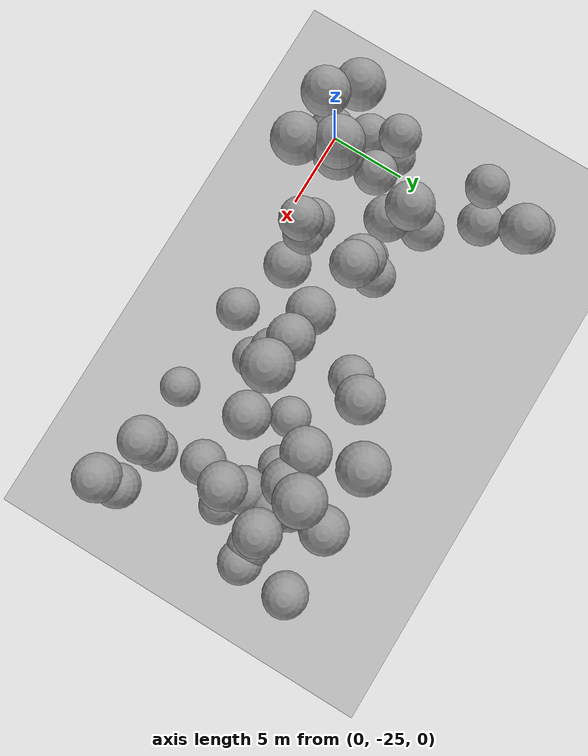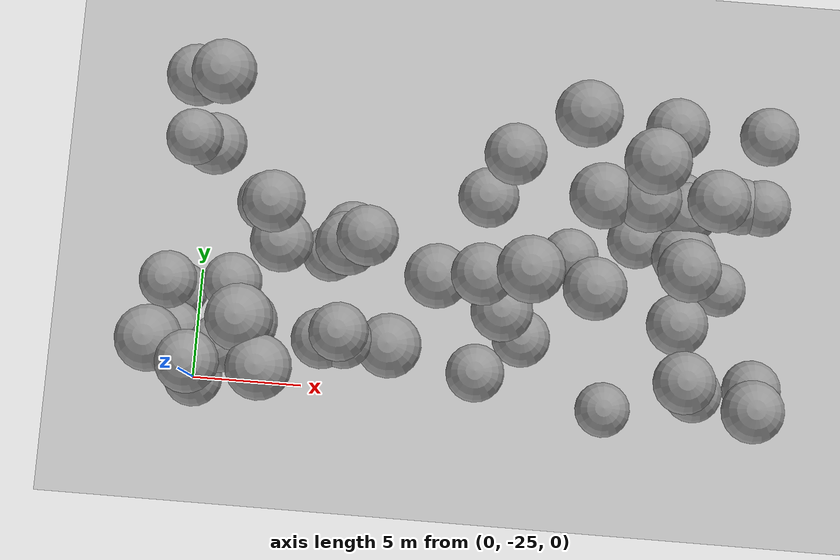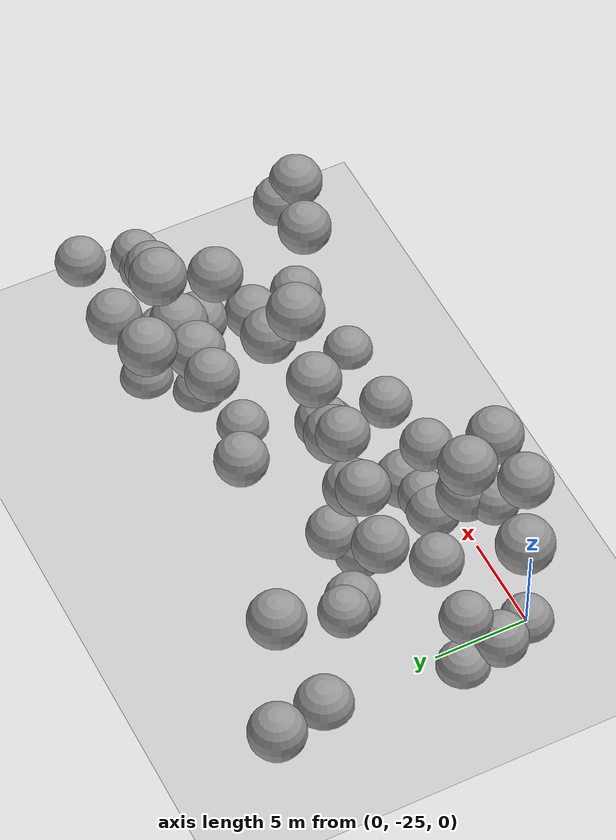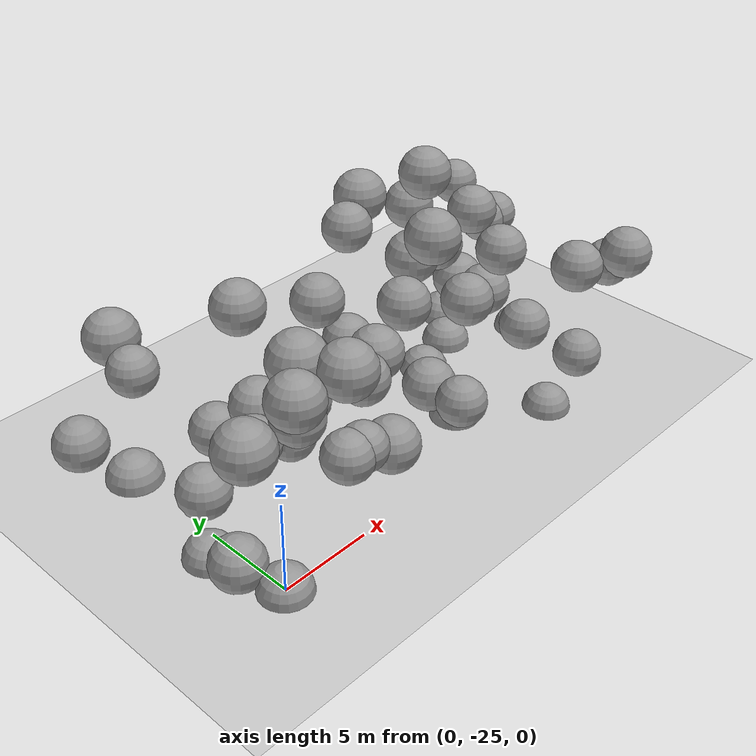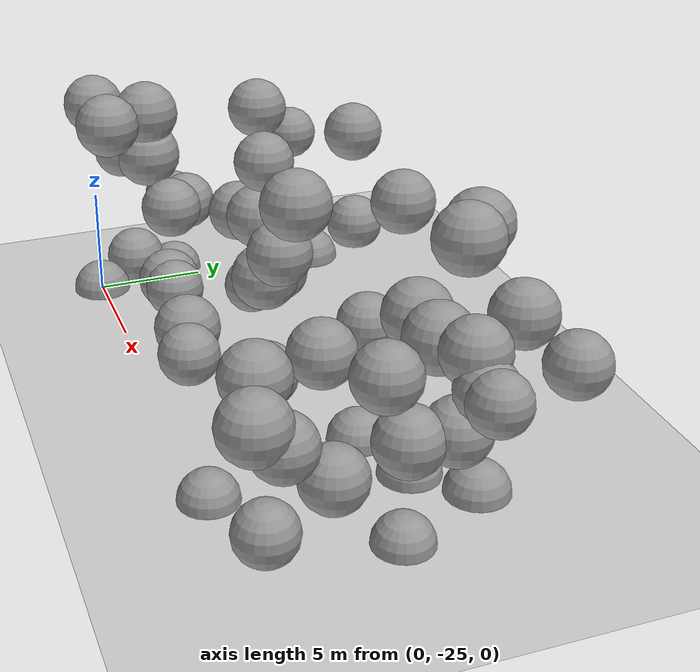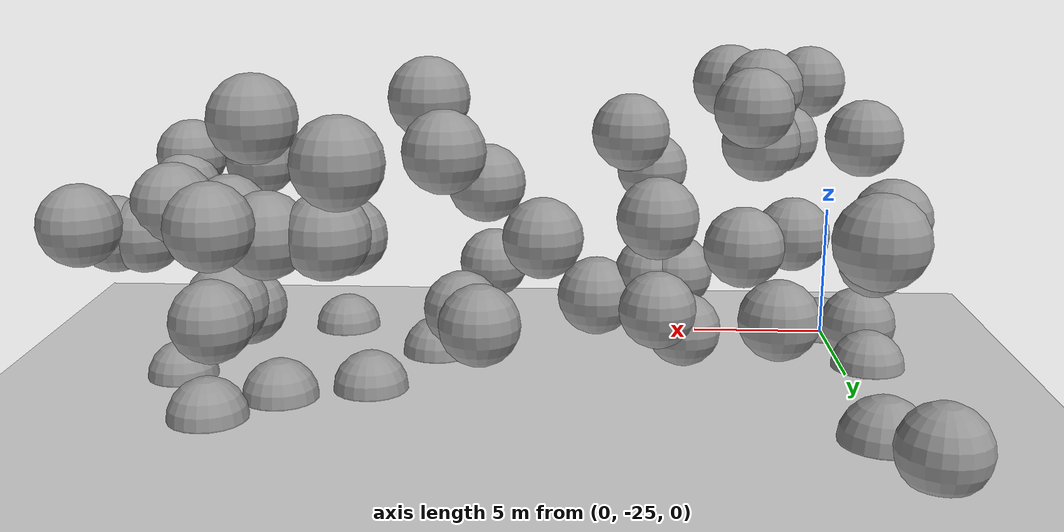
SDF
<sdf version="1.7">
 <world name="default">
  <model name="ground_plane">
   <static>1</static>
   <link name="link">
    <collision name="collision">
     <geometry><plane><normal>0 0 1</normal><size>100 100</size></plane></geometry>
     <surface>
      <contact><collide_bitmask>65535</collide_bitmask></contact>
      <friction><ode><mu>100</mu><mu2>50</mu2></ode></friction>
     </surface>
    </collision>
    <visual name="visual">
     <cast_shadows>0</cast_shadows>
     <geometry><plane><normal>0 0 1</normal><size>100 100</size></plane></geometry>
     <material>
      <script><uri>file://media/materials/scripts/gazebo.material</uri><name>Gazebo/Grey</name></script>
     </material>
    </visual>
   </link>
  </model>
  <model name="sphere_2">
   <static>1</static>
   <pose>0 -15 7 0 0 0</pose>
   <link name="link">
    <inertial>
     <mass>820.1626990093562</mass>
     <inertia>
      <ixx>513.4532903489413</ixx>
      <iyy>513.4532903489413</iyy>
      <izz>513.4532903489413</izz>
      <ixy>0</ixy>
      <ixz>0</ixz>
      <iyz>0</iyz>
     </inertia>
    </inertial>
    <collision name="collision">
     <geometry><sphere><radius>1.2510379038973842</radius></sphere></geometry>
    </collision>
    <visual name="visual">
     <geometry><sphere><radius>1.2510379038973842</radius></sphere></geometry>
     <material>
      <script><uri>file://media/materials/scripts/gazebo.material</uri><name>Gazebo/Grey</name></script>
     </material>
    </visual>
   </link>
  </model>
  <model name="sphere_18">
   <static>1</static>
   <pose>21 -13 7 0 0 0</pose>
   <link name="link">
    <inertial>
     <mass>1147.8261144888318</mass>
     <inertia>
      <ixx>899.0718924111744</ixx>
      <iyy>899.0718924111744</iyy>
      <izz>899.0718924111744</izz>
      <ixy>0</ixy>
      <ixz>0</ixz>
      <iyz>0</iyz>
     </inertia>
    </inertial>
    <collision name="collision">
     <geometry><sphere><radius>1.3993590601785768</radius></sphere></geometry>
    </collision>
    <visual name="visual">
     <geometry><sphere><radius>1.3993590601785768</radius></sphere></geometry>
     <material>
      <script><uri>file://media/materials/scripts/gazebo.material</uri><name>Gazebo/Grey</name></script>
     </material>
    </visual>
   </link>
  </model>
  <model name="sphere_33">
   <static>1</static>
   <pose>23 -24 1 0 0 0</pose>
   <link name="link">
    <inertial>
     <mass>998.2394421149766</mass>
     <inertia>
      <ixx>712.4025430400376</ixx>
      <iyy>712.4025430400376</iyy>
      <izz>712.4025430400376</izz>
      <ixy>0</ixy>
      <ixz>0</ixz>
      <iyz>0</iyz>
     </inertia>
    </inertial>
    <collision name="collision">
     <geometry><sphere><radius>1.3357198255867795</radius></sphere></geometry>
    </collision>
    <visual name="visual">
     <geometry><sphere><radius>1.3357198255867795</radius></sphere></geometry>
     <material>
      <script><uri>file://media/materials/scripts/gazebo.material</uri><name>Gazebo/Grey</name></script>
     </material>
    </visual>
   </link>
  </model>
  <model name="sphere_37">
   <static>1</static>
   <pose>6 -19 2 0 0 0</pose>
   <link name="link">
    <inertial>
     <mass>923.9607349359668</mass>
     <inertia>
      <ixx>626.2630342780069</ixx>
      <iyy>626.2630342780069</iyy>
      <izz>626.2630342780069</izz>
      <ixy>0</ixy>
      <ixz>0</ixz>
      <iyz>0</iyz>
     </inertia>
    </inertial>
    <collision name="collision">
     <geometry><sphere><radius>1.301732162940054</radius></sphere></geometry>
    </collision>
    <visual name="visual">
     <geometry><sphere><radius>1.301732162940054</radius></sphere></geometry>
     <material>
      <script><uri>file://media/materials/scripts/gazebo.material</uri><name>Gazebo/Grey</name></script>
     </material>
    </visual>
   </link>
  </model>
  <model name="sphere_50">
   <static>1</static>
   <pose>13 -20 7 0 0 0</pose>
   <link name="link">
    <inertial>
     <mass>1108.6238766442202</mass>
     <inertia>
      <ixx>848.479391265563</ixx>
      <iyy>848.479391265563</iyy>
      <izz>848.479391265563</izz>
      <ixy>0</ixy>
      <ixz>0</ixz>
      <iyz>0</iyz>
     </inertia>
    </inertial>
    <collision name="collision">
     <geometry><sphere><radius>1.3832431860033219</radius></sphere></geometry>
    </collision>
    <visual name="visual">
     <geometry><sphere><radius>1.3832431860033219</radius></sphere></geometry>
     <material>
      <script><uri>file://media/materials/scripts/gazebo.material</uri><name>Gazebo/Grey</name></script>
     </material>
    </visual>
   </link>
  </model>
  <model name="sphere_86">
   <static>1</static>
   <pose>-1 -11 1 0 0 0</pose>
   <link name="link">
    <inertial>
     <mass>1323.1719641005752</mass>
     <inertia>
      <ixx>1139.4485907945868</ixx>
      <iyy>1139.4485907945868</iyy>
      <izz>1139.4485907945868</izz>
      <ixy>0</ixy>
      <ixz>0</ixz>
      <iyz>0</iyz>
     </inertia>
    </inertial>
    <collision name="collision">
     <geometry><sphere><radius>1.4672672600644945</radius></sphere></geometry>
    </collision>
    <visual name="visual">
     <geometry><sphere><radius>1.4672672600644945</radius></sphere></geometry>
     <material>
      <script><uri>file://media/materials/scripts/gazebo.material</uri><name>Gazebo/Grey</name></script>
     </material>
    </visual>
   </link>
  </model>
  <model name="sphere_88">
   <static>1</static>
   <pose>7 -19 6 0 0 0</pose>
   <link name="link">
    <inertial>
     <mass>1233.8693670264627</mass>
     <inertia>
      <ixx>1014.1827563802168</ixx>
      <iyy>1014.1827563802168</iyy>
      <izz>1014.1827563802168</izz>
      <ixy>0</ixy>
      <ixz>0</ixz>
      <iyz>0</iyz>
     </inertia>
    </inertial>
    <collision name="collision">
     <geometry><sphere><radius>1.4334862261111592</radius></sphere></geometry>
    </collision>
    <visual name="visual">
     <geometry><sphere><radius>1.4334862261111592</radius></sphere></geometry>
     <material>
      <script><uri>file://media/materials/scripts/gazebo.material</uri><name>Gazebo/Grey</name></script>
     </material>
    </visual>
   </link>
  </model>
  <model name="sphere_94">
   <static>1</static>
   <pose>14 -21 2 0 0 0</pose>
   <link name="link">
    <inertial>
     <mass>1226.1503961438193</mass>
     <inertia>
      <ixx>1003.6304357332568</ixx>
      <iyy>1003.6304357332568</iyy>
      <izz>1003.6304357332568</izz>
      <ixy>0</ixy>
      <ixz>0</ixz>
      <iyz>0</iyz>
     </inertia>
    </inertial>
    <collision name="collision">
     <geometry><sphere><radius>1.4304907191277283</radius></sphere></geometry>
    </collision>
    <visual name="visual">
     <geometry><sphere><radius>1.4304907191277283</radius></sphere></geometry>
     <material>
      <script><uri>file://media/materials/scripts/gazebo.material</uri><name>Gazebo/Grey</name></script>
     </material>
    </visual>
   </link>
  </model>
  <model name="sphere_95">
   <static>1</static>
   <pose>24 -19 0 0 0 0</pose>
   <link name="link">
    <inertial>
     <mass>855.0352758426541</mass>
     <inertia>
      <ixx>550.3525369903084</ixx>
      <iyy>550.3525369903084</iyy>
      <izz>550.3525369903084</izz>
      <ixy>0</ixy>
      <ixz>0</ixz>
      <iyz>0</iyz>
     </inertia>
    </inertial>
    <collision name="collision">
     <geometry><sphere><radius>1.2685233752540006</radius></sphere></geometry>
    </collision>
    <visual name="visual">
     <geometry><sphere><radius>1.2685233752540006</radius></sphere></geometry>
     <material>
      <script><uri>file://media/materials/scripts/gazebo.material</uri><name>Gazebo/Grey</name></script>
     </material>
    </visual>
   </link>
  </model>
  <model name="sphere_101">
   <static>1</static>
   <pose>25 -16 6 0 0 0</pose>
   <link name="link">
    <inertial>
     <mass>841.7290316591947</mass>
     <inertia>
      <ixx>536.1522043649119</ixx>
      <iyy>536.1522043649119</iyy>
      <izz>536.1522043649119</izz>
      <ixy>0</ixy>
      <ixz>0</ixz>
      <iyz>0</iyz>
     </inertia>
    </inertial>
    <collision name="collision">
     <geometry><sphere><radius>1.2619085969323711</radius></sphere></geometry>
    </collision>
    <visual name="visual">
     <geometry><sphere><radius>1.2619085969323711</radius></sphere></geometry>
     <material>
      <script><uri>file://media/materials/scripts/gazebo.material</uri><name>Gazebo/Grey</name></script>
     </material>
    </visual>
   </link>
  </model>
  <model name="sphere_110">
   <static>1</static>
   <pose>19 -25 0 0 0 0</pose>
   <link name="link">
    <inertial>
     <mass>875.2082117400884</mass>
     <inertia>
      <ixx>572.1631601987316</ixx>
      <iyy>572.1631601987316</iyy>
      <izz>572.1631601987316</izz>
      <ixy>0</ixy>
      <ixz>0</ixz>
      <iyz>0</iyz>
     </inertia>
    </inertial>
    <collision name="collision">
     <geometry><sphere><radius>1.2784220662036958</radius></sphere></geometry>
    </collision>
    <visual name="visual">
     <geometry><sphere><radius>1.2784220662036958</radius></sphere></geometry>
     <material>
      <script><uri>file://media/materials/scripts/gazebo.material</uri><name>Gazebo/Grey</name></script>
     </material>
    </visual>
   </link>
  </model>
  <model name="sphere_112">
   <static>1</static>
   <pose>22 -24 7 0 0 0</pose>
   <link name="link">
    <inertial>
     <mass>1078.3061655491188</mass>
     <inertia>
      <ixx>810.1605015690552</ixx>
      <iyy>810.1605015690552</iyy>
      <izz>810.1605015690552</izz>
      <ixy>0</ixy>
      <ixz>0</ixz>
      <iyz>0</iyz>
     </inertia>
    </inertial>
    <collision name="collision">
     <geometry><sphere><radius>1.3705172086279165</radius></sphere></geometry>
    </collision>
    <visual name="visual">
     <geometry><sphere><radius>1.3705172086279165</radius></sphere></geometry>
     <material>
      <script><uri>file://media/materials/scripts/gazebo.material</uri><name>Gazebo/Grey</name></script>
     </material>
    </visual>
   </link>
  </model>
  <model name="sphere_115">
   <static>1</static>
   <pose>-1 -21 0 0 0 0</pose>
   <link name="link">
    <inertial>
     <mass>1014.352241181074</mass>
     <inertia>
      <ixx>731.67054789438</ixx>
      <iyy>731.67054789438</iyy>
      <izz>731.67054789438</izz>
      <ixy>0</ixy>
      <ixz>0</ixz>
      <iyz>0</iyz>
     </inertia>
    </inertial>
    <collision name="collision">
     <geometry><sphere><radius>1.3428682155516831</radius></sphere></geometry>
    </collision>
    <visual name="visual">
     <geometry><sphere><radius>1.3428682155516831</radius></sphere></geometry>
     <material>
      <script><uri>file://media/materials/scripts/gazebo.material</uri><name>Gazebo/Grey</name></script>
     </material>
    </visual>
   </link>
  </model>
  <model name="sphere_127">
   <static>1</static>
   <pose>15 -20 10 0 0 0</pose>
   <link name="link">
    <inertial>
     <mass>1273.777763205621</mass>
     <inertia>
      <ixx>1069.4414763830673</ixx>
      <iyy>1069.4414763830673</iyy>
      <izz>1069.4414763830673</izz>
      <ixy>0</ixy>
      <ixz>0</ixz>
      <iyz>0</iyz>
     </inertia>
    </inertial>
    <collision name="collision">
     <geometry><sphere><radius>1.4487774731129108</radius></sphere></geometry>
    </collision>
    <visual name="visual">
     <geometry><sphere><radius>1.4487774731129108</radius></sphere></geometry>
     <material>
      <script><uri>file://media/materials/scripts/gazebo.material</uri><name>Gazebo/Grey</name></script>
     </material>
    </visual>
   </link>
  </model>
  <model name="sphere_136">
   <static>1</static>
   <pose>2 -21 5 0 0 0</pose>
   <link name="link">
    <inertial>
     <mass>976.1705251949811</mass>
     <inertia>
      <ixx>686.3469934850493</ixx>
      <iyy>686.3469934850493</iyy>
      <izz>686.3469934850493</izz>
      <ixy>0</ixy>
      <ixz>0</ixz>
      <iyz>0</iyz>
     </inertia>
    </inertial>
    <collision name="collision">
     <geometry><sphere><radius>1.325803090365776</radius></sphere></geometry>
    </collision>
    <visual name="visual">
     <geometry><sphere><radius>1.325803090365776</radius></sphere></geometry>
     <material>
      <script><uri>file://media/materials/scripts/gazebo.material</uri><name>Gazebo/Grey</name></script>
     </material>
    </visual>
   </link>
  </model>
  <model name="sphere_147">
   <static>1</static>
   <pose>4 -25 10 0 0 0</pose>
   <link name="link">
    <inertial>
     <mass>1149.0251700719905</mass>
     <inertia>
      <ixx>900.6377691280899</ixx>
      <iyy>900.6377691280899</iyy>
      <izz>900.6377691280899</izz>
      <ixy>0</ixy>
      <ixz>0</ixz>
      <iyz>0</iyz>
     </inertia>
    </inertial>
    <collision name="collision">
     <geometry><sphere><radius>1.3998461622305505</radius></sphere></geometry>
    </collision>
    <visual name="visual">
     <geometry><sphere><radius>1.3998461622305505</radius></sphere></geometry>
     <material>
      <script><uri>file://media/materials/scripts/gazebo.material</uri><name>Gazebo/Grey</name></script>
     </material>
    </visual>
   </link>
  </model>
  <model name="sphere_156">
   <static>1</static>
   <pose>6 -23 3 0 0 0</pose>
   <link name="link">
    <inertial>
     <mass>1111.9185388971252</mass>
     <inertia>
      <ixx>852.6861401146127</ixx>
      <iyy>852.6861401146127</iyy>
      <izz>852.6861401146127</izz>
      <ixy>0</ixy>
      <ixz>0</ixz>
      <iyz>0</iyz>
     </inertia>
    </inertial>
    <collision name="collision">
     <geometry><sphere><radius>1.384612093917686</radius></sphere></geometry>
    </collision>
    <visual name="visual">
     <geometry><sphere><radius>1.384612093917686</radius></sphere></geometry>
     <material>
      <script><uri>file://media/materials/scripts/gazebo.material</uri><name>Gazebo/Grey</name></script>
     </material>
    </visual>
   </link>
  </model>
  <model name="sphere_163">
   <static>1</static>
   <pose>-1 -24 8 0 0 0</pose>
   <link name="link">
    <inertial>
     <mass>1281.579532136894</mass>
     <inertia>
      <ixx>1080.380797213852</ixx>
      <iyy>1080.380797213852</iyy>
      <izz>1080.380797213852</izz>
      <ixy>0</ixy>
      <ixz>0</ixz>
      <iyz>0</iyz>
     </inertia>
    </inertial>
    <collision name="collision">
     <geometry><sphere><radius>1.451729329904357</radius></sphere></geometry>
    </collision>
    <visual name="visual">
     <geometry><sphere><radius>1.451729329904357</radius></sphere></geometry>
     <material>
      <script><uri>file://media/materials/scripts/gazebo.material</uri><name>Gazebo/Grey</name></script>
     </material>
    </visual>
   </link>
  </model>
  <model name="sphere_165">
   <static>1</static>
   <pose>14 -15 9 0 0 0</pose>
   <link name="link">
    <inertial>
     <mass>1017.2076411902935</mass>
     <inertia>
      <ixx>735.1065204096426</ixx>
      <iyy>735.1065204096426</iyy>
      <izz>735.1065204096426</izz>
      <ixy>0</ixy>
      <ixz>0</ixz>
      <iyz>0</iyz>
     </inertia>
    </inertial>
    <collision name="collision">
     <geometry><sphere><radius>1.3441270923691977</radius></sphere></geometry>
    </collision>
    <visual name="visual">
     <geometry><sphere><radius>1.3441270923691977</radius></sphere></geometry>
     <material>
      <script><uri>file://media/materials/scripts/gazebo.material</uri><name>Gazebo/Grey</name></script>
     </material>
    </visual>
   </link>
  </model>
  <model name="sphere_169">
   <static>1</static>
   <pose>24 -16 6 0 0 0</pose>
   <link name="link">
    <inertial>
     <mass>847.3583752920309</mass>
     <inertia>
      <ixx>542.1416781510901</ixx>
      <iyy>542.1416781510901</iyy>
      <izz>542.1416781510901</izz>
      <ixy>0</ixy>
      <ixz>0</ixz>
      <iyz>0</iyz>
     </inertia>
    </inertial>
    <collision name="collision">
     <geometry><sphere><radius>1.264715493719504</radius></sphere></geometry>
    </collision>
    <visual name="visual">
     <geometry><sphere><radius>1.264715493719504</radius></sphere></geometry>
     <material>
      <script><uri>file://media/materials/scripts/gazebo.material</uri><name>Gazebo/Grey</name></script>
     </material>
    </visual>
   </link>
  </model>
  <model name="sphere_172">
   <static>1</static>
   <pose>0 -25 0 0 0 0</pose>
   <link name="link">
    <inertial>
     <mass>1085.5033214784619</mass>
     <inertia>
      <ixx>819.1928999734619</ixx>
      <iyy>819.1928999734619</iyy>
      <izz>819.1928999734619</izz>
      <ixy>0</ixy>
      <ixz>0</ixz>
      <iyz>0</iyz>
     </inertia>
    </inertial>
    <collision name="collision">
     <geometry><sphere><radius>1.3735596227429996</radius></sphere></geometry>
    </collision>
    <visual name="visual">
     <geometry><sphere><radius>1.3735596227429996</radius></sphere></geometry>
     <material>
      <script><uri>file://media/materials/scripts/gazebo.material</uri><name>Gazebo/Grey</name></script>
     </material>
    </visual>
   </link>
  </model>
  <model name="sphere_175">
   <static>1</static>
   <pose>18 -16 6 0 0 0</pose>
   <link name="link">
    <inertial>
     <mass>1388.4366052491248</mass>
     <inertia>
      <ixx>1234.651372535838</ixx>
      <iyy>1234.651372535838</iyy>
      <izz>1234.651372535838</izz>
      <ixy>0</ixy>
      <ixz>0</ixz>
      <iyz>0</iyz>
     </inertia>
    </inertial>
    <collision name="collision">
     <geometry><sphere><radius>1.4910051673492024</radius></sphere></geometry>
    </collision>
    <visual name="visual">
     <geometry><sphere><radius>1.4910051673492024</radius></sphere></geometry>
     <material>
      <script><uri>file://media/materials/scripts/gazebo.material</uri><name>Gazebo/Grey</name></script>
     </material>
    </visual>
   </link>
  </model>
  <model name="sphere_179">
   <static>1</static>
   <pose>23 -16 7 0 0 0</pose>
   <link name="link">
    <inertial>
     <mass>1131.3043846475268</mass>
     <inertia>
      <ixx>877.6069132748735</ixx>
      <iyy>877.6069132748735</iyy>
      <izz>877.6069132748735</izz>
      <ixy>0</ixy>
      <ixz>0</ixz>
      <iyz>0</iyz>
     </inertia>
    </inertial>
    <collision name="collision">
     <geometry><sphere><radius>1.3926124934498558</radius></sphere></geometry>
    </collision>
    <visual name="visual">
     <geometry><sphere><radius>1.3926124934498558</radius></sphere></geometry>
     <material>
      <script><uri>file://media/materials/scripts/gazebo.material</uri><name>Gazebo/Grey</name></script>
     </material>
    </visual>
   </link>
  </model>
  <model name="sphere_188">
   <static>1</static>
   <pose>20 -16 6 0 0 0</pose>
   <link name="link">
    <inertial>
     <mass>1365.4670408220738</mass>
     <inertia>
      <ixx>1200.7970750833701</ixx>
      <iyy>1200.7970750833701</iyy>
      <izz>1200.7970750833701</izz>
      <ixy>0</ixy>
      <ixz>0</ixz>
      <iyz>0</iyz>
     </inertia>
    </inertial>
    <collision name="collision">
     <geometry><sphere><radius>1.4827372701746828</radius></sphere></geometry>
    </collision>
    <visual name="visual">
     <geometry><sphere><radius>1.4827372701746828</radius></sphere></geometry>
     <material>
      <script><uri>file://media/materials/scripts/gazebo.material</uri><name>Gazebo/Grey</name></script>
     </material>
    </visual>
   </link>
  </model>
  <model name="sphere_204">
   <static>1</static>
   <pose>-1 -23 1 0 0 0</pose>
   <link name="link">
    <inertial>
     <mass>1167.2398915135711</mass>
     <inertia>
      <ixx>924.5586250048497</ixx>
      <iyy>924.5586250048497</iyy>
      <izz>924.5586250048497</izz>
      <ixy>0</ixy>
      <ixz>0</ixz>
      <iyz>0</iyz>
     </inertia>
    </inertial>
    <collision name="collision">
     <geometry><sphere><radius>1.4072043558131624</radius></sphere></geometry>
    </collision>
    <visual name="visual">
     <geometry><sphere><radius>1.4072043558131624</radius></sphere></geometry>
     <material>
      <script><uri>file://media/materials/scripts/gazebo.material</uri><name>Gazebo/Grey</name></script>
     </material>
    </visual>
   </link>
  </model>
  <model name="sphere_207">
   <static>1</static>
   <pose>20 -15 10 0 0 0</pose>
   <link name="link">
    <inertial>
     <mass>1270.6309968707947</mass>
     <inertia>
      <ixx>1065.0418202968024</ixx>
      <iyy>1065.0418202968024</iyy>
      <izz>1065.0418202968024</izz>
      <ixy>0</ixy>
      <ixz>0</ixz>
      <iyz>0</iyz>
     </inertia>
    </inertial>
    <collision name="collision">
     <geometry><sphere><radius>1.4475834596155397</radius></sphere></geometry>
    </collision>
    <visual name="visual">
     <geometry><sphere><radius>1.4475834596155397</radius></sphere></geometry>
     <material>
      <script><uri>file://media/materials/scripts/gazebo.material</uri><name>Gazebo/Grey</name></script>
     </material>
    </visual>
   </link>
  </model>
  <model name="sphere_214">
   <static>1</static>
   <pose>18 -20 5 0 0 0</pose>
   <link name="link">
    <inertial>
     <mass>1228.8949390128416</mass>
     <inertia>
      <ixx>1007.3773407196586</ixx>
      <iyy>1007.3773407196586</iyy>
      <izz>1007.3773407196586</izz>
      <ixy>0</ixy>
      <ixz>0</ixz>
      <iyz>0</iyz>
     </inertia>
    </inertial>
    <collision name="collision">
     <geometry><sphere><radius>1.431557232522639</radius></sphere></geometry>
    </collision>
    <visual name="visual">
     <geometry><sphere><radius>1.431557232522639</radius></sphere></geometry>
     <material>
      <script><uri>file://media/materials/scripts/gazebo.material</uri><name>Gazebo/Grey</name></script>
     </material>
    </visual>
   </link>
  </model>
  <model name="sphere_227">
   <static>1</static>
   <pose>25 -25 7 0 0 0</pose>
   <link name="link">
    <inertial>
     <mass>1100.9987035556503</mass>
     <inertia>
      <ixx>838.7752319295337</ixx>
      <iyy>838.7752319295337</iyy>
      <izz>838.7752319295337</izz>
      <ixy>0</ixy>
      <ixz>0</ixz>
      <iyz>0</iyz>
     </inertia>
    </inertial>
    <collision name="collision">
     <geometry><sphere><radius>1.3800645475181441</radius></sphere></geometry>
    </collision>
    <visual name="visual">
     <geometry><sphere><radius>1.3800645475181441</radius></sphere></geometry>
     <material>
      <script><uri>file://media/materials/scripts/gazebo.material</uri><name>Gazebo/Grey</name></script>
     </material>
    </visual>
   </link>
  </model>
  <model name="sphere_230">
   <static>1</static>
   <pose>3 -23 8 0 0 0</pose>
   <link name="link">
    <inertial>
     <mass>1294.75381477178</mass>
     <inertia>
      <ixx>1098.954176604033</ixx>
      <iyy>1098.954176604033</iyy>
      <izz>1098.954176604033</izz>
      <ixy>0</ixy>
      <ixz>0</ixz>
      <iyz>0</iyz>
     </inertia>
    </inertial>
    <collision name="collision">
     <geometry><sphere><radius>1.4566868397123818</radius></sphere></geometry>
    </collision>
    <visual name="visual">
     <geometry><sphere><radius>1.4566868397123818</radius></sphere></geometry>
     <material>
      <script><uri>file://media/materials/scripts/gazebo.material</uri><name>Gazebo/Grey</name></script>
     </material>
    </visual>
   </link>
  </model>
  <model name="sphere_241">
   <static>1</static>
   <pose>25 -24 6 0 0 0</pose>
   <link name="link">
    <inertial>
     <mass>899.5227463981558</mass>
     <inertia>
      <ixx>598.9002600154103</ixx>
      <iyy>598.9002600154103</iyy>
      <izz>598.9002600154103</izz>
      <ixy>0</ixy>
      <ixz>0</ixz>
      <iyz>0</iyz>
     </inertia>
    </inertial>
    <collision name="collision">
     <geometry><sphere><radius>1.2901528918984286</radius></sphere></geometry>
    </collision>
    <visual name="visual">
     <geometry><sphere><radius>1.2901528918984286</radius></sphere></geometry>
     <material>
      <script><uri>file://media/materials/scripts/gazebo.material</uri><name>Gazebo/Grey</name></script>
     </material>
    </visual>
   </link>
  </model>
  <model name="sphere_244">
   <static>1</static>
   <pose>25 -13 7 0 0 0</pose>
   <link name="link">
    <inertial>
     <mass>891.3588274598362</mass>
     <inertia>
      <ixx>589.868495634434</ixx>
      <iyy>589.868495634434</iyy>
      <izz>589.868495634434</izz>
      <ixy>0</ixy>
      <ixz>0</ixz>
      <iyz>0</iyz>
     </inertia>
    </inertial>
    <collision name="collision">
     <geometry><sphere><radius>1.2862379530531802</radius></sphere></geometry>
    </collision>
    <visual name="visual">
     <geometry><sphere><radius>1.2862379530531802</radius></sphere></geometry>
     <material>
      <script><uri>file://media/materials/scripts/gazebo.material</uri><name>Gazebo/Grey</name></script>
     </material>
    </visual>
   </link>
  </model>
  <model name="sphere_251">
   <static>1</static>
   <pose>1 -12 7 0 0 0</pose>
   <link name="link">
    <inertial>
     <mass>1258.0638740797724</mass>
     <inertia>
      <ixx>1047.5435111934312</ixx>
      <iyy>1047.5435111934312</iyy>
      <izz>1047.5435111934312</izz>
      <ixy>0</ixy>
      <ixz>0</ixz>
      <iyz>0</iyz>
     </inertia>
    </inertial>
    <collision name="collision">
     <geometry><sphere><radius>1.4427952175340686</radius></sphere></geometry>
    </collision>
    <visual name="visual">
     <geometry><sphere><radius>1.4427952175340686</radius></sphere></geometry>
     <material>
      <script><uri>file://media/materials/scripts/gazebo.material</uri><name>Gazebo/Grey</name></script>
     </material>
    </visual>
   </link>
  </model>
  <model name="sphere_253">
   <static>1</static>
   <pose>13 -16 3 0 0 0</pose>
   <link name="link">
    <inertial>
     <mass>1122.011835682702</mass>
     <inertia>
      <ixx>865.6253813052869</ixx>
      <iyy>865.6253813052869</iyy>
      <izz>865.6253813052869</izz>
      <ixy>0</ixy>
      <ixz>0</ixz>
      <iyz>0</iyz>
     </inertia>
    </inertial>
    <collision name="collision">
     <geometry><sphere><radius>1.3887890265339882</radius></sphere></geometry>
    </collision>
    <visual name="visual">
     <geometry><sphere><radius>1.3887890265339882</radius></sphere></geometry>
     <material>
      <script><uri>file://media/materials/scripts/gazebo.material</uri><name>Gazebo/Grey</name></script>
     </material>
    </visual>
   </link>
  </model>
  <model name="sphere_257">
   <static>1</static>
   <pose>22 -19 6 0 0 0</pose>
   <link name="link">
    <inertial>
     <mass>1182.2717639091984</mass>
     <inertia>
      <ixx>944.4880068758343</ixx>
      <iyy>944.4880068758343</iyy>
      <izz>944.4880068758343</izz>
      <ixy>0</ixy>
      <ixz>0</ixz>
      <iyz>0</iyz>
     </inertia>
    </inertial>
    <collision name="collision">
     <geometry><sphere><radius>1.413219331033977</radius></sphere></geometry>
    </collision>
    <visual name="visual">
     <geometry><sphere><radius>1.413219331033977</radius></sphere></geometry>
     <material>
      <script><uri>file://media/materials/scripts/gazebo.material</uri><name>Gazebo/Grey</name></script>
     </material>
    </visual>
   </link>
  </model>
  <model name="sphere_261">
   <static>1</static>
   <pose>22 -21 2 0 0 0</pose>
   <link name="link">
    <inertial>
     <mass>1197.4669793394505</mass>
     <inertia>
      <ixx>964.8063706221025</ixx>
      <iyy>964.8063706221025</iyy>
      <izz>964.8063706221025</izz>
      <ixy>0</ixy>
      <ixz>0</ixz>
      <iyz>0</iyz>
     </inertia>
    </inertial>
    <collision name="collision">
     <geometry><sphere><radius>1.4192480701738406</radius></sphere></geometry>
    </collision>
    <visual name="visual">
     <geometry><sphere><radius>1.4192480701738406</radius></sphere></geometry>
     <material>
      <script><uri>file://media/materials/scripts/gazebo.material</uri><name>Gazebo/Grey</name></script>
     </material>
    </visual>
   </link>
  </model>
  <model name="sphere_263">
   <static>1</static>
   <pose>4 -19 5 0 0 0</pose>
   <link name="link">
    <inertial>
     <mass>1167.1749013714789</mass>
     <inertia>
      <ixx>924.4728299001561</ixx>
      <iyy>924.4728299001561</iyy>
      <izz>924.4728299001561</izz>
      <ixy>0</ixy>
      <ixz>0</ixz>
      <iyz>0</iyz>
     </inertia>
    </inertial>
    <collision name="collision">
     <geometry><sphere><radius>1.4071782383289153</radius></sphere></geometry>
    </collision>
    <visual name="visual">
     <geometry><sphere><radius>1.4071782383289153</radius></sphere></geometry>
     <material>
      <script><uri>file://media/materials/scripts/gazebo.material</uri><name>Gazebo/Grey</name></script>
     </material>
    </visual>
   </link>
  </model>
  <model name="sphere_269">
   <static>1</static>
   <pose>8 -19 9 0 0 0</pose>
   <link name="link">
    <inertial>
     <mass>970.6491756890646</mass>
     <inertia>
      <ixx>679.889084265207</ixx>
      <iyy>679.889084265207</iyy>
      <izz>679.889084265207</izz>
      <ixy>0</ixy>
      <ixz>0</ixz>
      <iyz>0</iyz>
     </inertia>
    </inertial>
    <collision name="collision">
     <geometry><sphere><radius>1.3232987235697575</radius></sphere></geometry>
    </collision>
    <visual name="visual">
     <geometry><sphere><radius>1.3232987235697575</radius></sphere></geometry>
     <material>
      <script><uri>file://media/materials/scripts/gazebo.material</uri><name>Gazebo/Grey</name></script>
     </material>
    </visual>
   </link>
  </model>
  <model name="sphere_282">
   <static>1</static>
   <pose>4 -18 10 0 0 0</pose>
   <link name="link">
    <inertial>
     <mass>993.5921592084659</mass>
     <inertia>
      <ixx>706.8835000931723</ixx>
      <iyy>706.8835000931723</iyy>
      <izz>706.8835000931723</izz>
      <ixy>0</ixy>
      <ixz>0</ixz>
      <iyz>0</iyz>
     </inertia>
    </inertial>
    <collision name="collision">
     <geometry><sphere><radius>1.3336437953427809</radius></sphere></geometry>
    </collision>
    <visual name="visual">
     <geometry><sphere><radius>1.3336437953427809</radius></sphere></geometry>
     <material>
      <script><uri>file://media/materials/scripts/gazebo.material</uri><name>Gazebo/Grey</name></script>
     </material>
    </visual>
   </link>
  </model>
  <model name="sphere_284">
   <static>1</static>
   <pose>22 -18 3 0 0 0</pose>
   <link name="link">
    <inertial>
     <mass>1327.099151806253</mass>
     <inertia>
      <ixx>1145.090656819799</ixx>
      <iyy>1145.090656819799</iyy>
      <izz>1145.090656819799</izz>
      <ixy>0</ixy>
      <ixz>0</ixz>
      <iyz>0</iyz>
     </inertia>
    </inertial>
    <collision name="collision">
     <geometry><sphere><radius>1.4687174476170441</radius></sphere></geometry>
    </collision>
    <visual name="visual">
     <geometry><sphere><radius>1.4687174476170441</radius></sphere></geometry>
     <material>
      <script><uri>file://media/materials/scripts/gazebo.material</uri><name>Gazebo/Grey</name></script>
     </material>
    </visual>
   </link>
  </model>
  <model name="sphere_285">
   <static>1</static>
   <pose>15 -22 0 0 0 0</pose>
   <link name="link">
    <inertial>
     <mass>1052.0501158806069</mass>
     <inertia>
      <ixx>777.5499528184467</ixx>
      <iyy>777.5499528184467</iyy>
      <izz>777.5499528184467</izz>
      <ixy>0</ixy>
      <ixz>0</ixz>
      <iyz>0</iyz>
     </inertia>
    </inertial>
    <collision name="collision">
     <geometry><sphere><radius>1.3593019494488696</radius></sphere></geometry>
    </collision>
    <visual name="visual">
     <geometry><sphere><radius>1.3593019494488696</radius></sphere></geometry>
     <material>
      <script><uri>file://media/materials/scripts/gazebo.material</uri><name>Gazebo/Grey</name></script>
     </material>
    </visual>
   </link>
  </model>
  <model name="sphere_299">
   <static>1</static>
   <pose>9 -23 2 0 0 0</pose>
   <link name="link">
    <inertial>
     <mass>1387.0313124598554</mass>
     <inertia>
      <ixx>1232.569341052375</ixx>
      <iyy>1232.569341052375</iyy>
      <izz>1232.569341052375</izz>
      <ixy>0</ixy>
      <ixz>0</ixz>
      <iyz>0</iyz>
     </inertia>
    </inertial>
    <collision name="collision">
     <geometry><sphere><radius>1.490501962014397</radius></sphere></geometry>
    </collision>
    <visual name="visual">
     <geometry><sphere><radius>1.490501962014397</radius></sphere></geometry>
     <material>
      <script><uri>file://media/materials/scripts/gazebo.material</uri><name>Gazebo/Grey</name></script>
     </material>
    </visual>
   </link>
  </model>
  <model name="sphere_304">
   <static>1</static>
   <pose>3 -23 10 0 0 0</pose>
   <link name="link">
    <inertial>
     <mass>1257.7055632205856</mass>
     <inertia>
      <ixx>1047.0463046155967</ixx>
      <iyy>1047.0463046155967</iyy>
      <izz>1047.0463046155967</izz>
      <ixy>0</ixy>
      <ixz>0</ixz>
      <iyz>0</iyz>
     </inertia>
    </inertial>
    <collision name="collision">
     <geometry><sphere><radius>1.4426582297143964</radius></sphere></geometry>
    </collision>
    <visual name="visual">
     <geometry><sphere><radius>1.4426582297143964</radius></sphere></geometry>
     <material>
      <script><uri>file://media/materials/scripts/gazebo.material</uri><name>Gazebo/Grey</name></script>
     </material>
    </visual>
   </link>
  </model>
  <model name="sphere_310">
   <static>1</static>
   <pose>0 -14 0 0 0 0</pose>
   <link name="link">
    <inertial>
     <mass>1363.986854486353</mass>
     <inertia>
      <ixx>1198.628389634605</ixx>
      <iyy>1198.628389634605</iyy>
      <izz>1198.628389634605</izz>
      <ixy>0</ixy>
      <ixz>0</ixz>
      <iyz>0</iyz>
     </inertia>
    </inertial>
    <collision name="collision">
     <geometry><sphere><radius>1.4822013068014657</radius></sphere></geometry>
    </collision>
    <visual name="visual">
     <geometry><sphere><radius>1.4822013068014657</radius></sphere></geometry>
     <material>
      <script><uri>file://media/materials/scripts/gazebo.material</uri><name>Gazebo/Grey</name></script>
     </material>
    </visual>
   </link>
  </model>
  <model name="sphere_311">
   <static>1</static>
   <pose>3 -17 3 0 0 0</pose>
   <link name="link">
    <inertial>
     <mass>1095.9793031723998</mass>
     <inertia>
      <ixx>832.4116950399198</ixx>
      <iyy>832.4116950399198</iyy>
      <izz>832.4116950399198</izz>
      <ixy>0</ixy>
      <ixz>0</ixz>
      <iyz>0</iyz>
     </inertia>
    </inertial>
    <collision name="collision">
     <geometry><sphere><radius>1.3779641363167974</radius></sphere></geometry>
    </collision>
    <visual name="visual">
     <geometry><sphere><radius>1.3779641363167974</radius></sphere></geometry>
     <material>
      <script><uri>file://media/materials/scripts/gazebo.material</uri><name>Gazebo/Grey</name></script>
     </material>
    </visual>
   </link>
  </model>
  <model name="sphere_321">
   <static>1</static>
   <pose>1 -25 10 0 0 0</pose>
   <link name="link">
    <inertial>
     <mass>1025.7900190432163</mass>
     <inertia>
      <ixx>745.4726252704971</ixx>
      <iyy>745.4726252704971</iyy>
      <izz>745.4726252704971</izz>
      <ixy>0</ixy>
      <ixz>0</ixz>
      <iyz>0</iyz>
     </inertia>
    </inertial>
    <collision name="collision">
     <geometry><sphere><radius>1.3478967306309877</radius></sphere></geometry>
    </collision>
    <visual name="visual">
     <geometry><sphere><radius>1.3478967306309877</radius></sphere></geometry>
     <material>
      <script><uri>file://media/materials/scripts/gazebo.material</uri><name>Gazebo/Grey</name></script>
     </material>
    </visual>
   </link>
  </model>
  <model name="sphere_324">
   <static>1</static>
   <pose>7 -23 7 0 0 0</pose>
   <link name="link">
    <inertial>
     <mass>915.3503939813504</mass>
     <inertia>
      <ixx>616.5664271484064</ixx>
      <iyy>616.5664271484064</iyy>
      <izz>616.5664271484064</izz>
      <ixy>0</ixy>
      <ixz>0</ixz>
      <iyz>0</iyz>
     </inertia>
    </inertial>
    <collision name="collision">
     <geometry><sphere><radius>1.2976759459002651</radius></sphere></geometry>
    </collision>
    <visual name="visual">
     <geometry><sphere><radius>1.2976759459002651</radius></sphere></geometry>
     <material>
      <script><uri>file://media/materials/scripts/gazebo.material</uri><name>Gazebo/Grey</name></script>
     </material>
    </visual>
   </link>
  </model>
  <model name="sphere_336">
   <static>1</static>
   <pose>13 -24 3 0 0 0</pose>
   <link name="link">
    <inertial>
     <mass>964.7212052298497</mass>
     <inertia>
      <ixx>672.9827921403883</ixx>
      <iyy>672.9827921403883</iyy>
      <izz>672.9827921403883</izz>
      <ixy>0</ixy>
      <ixz>0</ixz>
      <iyz>0</iyz>
     </inertia>
    </inertial>
    <collision name="collision">
     <geometry><sphere><radius>1.3205993275839412</radius></sphere></geometry>
    </collision>
    <visual name="visual">
     <geometry><sphere><radius>1.3205993275839412</radius></sphere></geometry>
     <material>
      <script><uri>file://media/materials/scripts/gazebo.material</uri><name>Gazebo/Grey</name></script>
     </material>
    </visual>
   </link>
  </model>
  <model name="sphere_345">
   <static>1</static>
   <pose>-1 -21 4 0 0 0</pose>
   <link name="link">
    <inertial>
     <mass>929.0323049062017</mass>
     <inertia>
      <ixx>632.0027162685708</ixx>
      <iyy>632.0027162685708</iyy>
      <izz>632.0027162685708</izz>
      <ixy>0</ixy>
      <ixz>0</ixz>
      <iyz>0</iyz>
     </inertia>
    </inertial>
    <collision name="collision">
     <geometry><sphere><radius>1.3041095307137969</radius></sphere></geometry>
    </collision>
    <visual name="visual">
     <geometry><sphere><radius>1.3041095307137969</radius></sphere></geometry>
     <material>
      <script><uri>file://media/materials/scripts/gazebo.material</uri><name>Gazebo/Grey</name></script>
     </material>
    </visual>
   </link>
  </model>
  <model name="sphere_352">
   <static>1</static>
   <pose>22 -15 0 0 0 0</pose>
   <link name="link">
    <inertial>
     <mass>1080.3243347430127</mass>
     <inertia>
      <ixx>812.689252771572</ixx>
      <iyy>812.689252771572</iyy>
      <izz>812.689252771572</izz>
      <ixy>0</ixy>
      <ixz>0</ixz>
      <iyz>0</iyz>
     </inertia>
    </inertial>
    <collision name="collision">
     <geometry><sphere><radius>1.371371700578877</radius></sphere></geometry>
    </collision>
    <visual name="visual">
     <geometry><sphere><radius>1.371371700578877</radius></sphere></geometry>
     <material>
      <script><uri>file://media/materials/scripts/gazebo.material</uri><name>Gazebo/Grey</name></script>
     </material>
    </visual>
   </link>
  </model>
  <model name="sphere_364">
   <static>1</static>
   <pose>17 -13 9 0 0 0</pose>
   <link name="link">
    <inertial>
     <mass>1313.5404273472386</mass>
     <inertia>
      <ixx>1125.658507713179</ixx>
      <iyy>1125.658507713179</iyy>
      <izz>1125.658507713179</izz>
      <ixy>0</ixy>
      <ixz>0</ixz>
      <iyz>0</iyz>
     </inertia>
    </inertial>
    <collision name="collision">
     <geometry><sphere><radius>1.463698445150175</radius></sphere></geometry>
    </collision>
    <visual name="visual">
     <geometry><sphere><radius>1.463698445150175</radius></sphere></geometry>
     <material>
      <script><uri>file://media/materials/scripts/gazebo.material</uri><name>Gazebo/Grey</name></script>
     </material>
    </visual>
   </link>
  </model>
  <model name="sphere_377">
   <static>1</static>
   <pose>22 -16 3 0 0 0</pose>
   <link name="link">
    <inertial>
     <mass>1217.3657086992116</mass>
     <inertia>
      <ixx>991.6749860955442</ixx>
      <iyy>991.6749860955442</iyy>
      <izz>991.6749860955442</izz>
      <ixy>0</ixy>
      <ixz>0</ixz>
      <iyz>0</iyz>
     </inertia>
    </inertial>
    <collision name="collision">
     <geometry><sphere><radius>1.4270663038782496</radius></sphere></geometry>
    </collision>
    <visual name="visual">
     <geometry><sphere><radius>1.4270663038782496</radius></sphere></geometry>
     <material>
      <script><uri>file://media/materials/scripts/gazebo.material</uri><name>Gazebo/Grey</name></script>
     </material>
    </visual>
   </link>
  </model>
  <model name="sphere_379">
   <static>1</static>
   <pose>11 -20 5 0 0 0</pose>
   <link name="link">
    <inertial>
     <mass>1300.2168769335547</mass>
     <inertia>
      <ixx>1106.6932217472006</ixx>
      <iyy>1106.6932217472006</iyy>
      <izz>1106.6932217472006</izz>
      <ixy>0</ixy>
      <ixz>0</ixz>
      <iyz>0</iyz>
     </inertia>
    </inertial>
    <collision name="collision">
     <geometry><sphere><radius>1.4587327381301678</radius></sphere></geometry>
    </collision>
    <visual name="visual">
     <geometry><sphere><radius>1.4587327381301678</radius></sphere></geometry>
     <material>
      <script><uri>file://media/materials/scripts/gazebo.material</uri><name>Gazebo/Grey</name></script>
     </material>
    </visual>
   </link>
  </model>
  <model name="sphere_380">
   <static>1</static>
   <pose>7 -23 3 0 0 0</pose>
   <link name="link">
    <inertial>
     <mass>922.8617172298016</mass>
     <inertia>
      <ixx>625.0219980720873</ixx>
      <iyy>625.0219980720873</iyy>
      <izz>625.0219980720873</izz>
      <ixy>0</ixy>
      <ixz>0</ixz>
      <iyz>0</iyz>
     </inertia>
    </inertial>
    <collision name="collision">
     <geometry><sphere><radius>1.301215837140007</radius></sphere></geometry>
    </collision>
    <visual name="visual">
     <geometry><sphere><radius>1.301215837140007</radius></sphere></geometry>
     <material>
      <script><uri>file://media/materials/scripts/gazebo.material</uri><name>Gazebo/Grey</name></script>
     </material>
    </visual>
   </link>
  </model>
  <model name="sphere_385">
   <static>1</static>
   <pose>20 -17 0 0 0 0</pose>
   <link name="link">
    <inertial>
     <mass>1003.0657485404035</mass>
     <inertia>
      <ixx>718.1523511447838</ixx>
      <iyy>718.1523511447838</iyy>
      <izz>718.1523511447838</izz>
      <ixy>0</ixy>
      <ixz>0</ixz>
      <iyz>0</iyz>
     </inertia>
    </inertial>
    <collision name="collision">
     <geometry><sphere><radius>1.3378690199091277</radius></sphere></geometry>
    </collision>
    <visual name="visual">
     <geometry><sphere><radius>1.3378690199091277</radius></sphere></geometry>
     <material>
      <script><uri>file://media/materials/scripts/gazebo.material</uri><name>Gazebo/Grey</name></script>
     </material>
    </visual>
   </link>
  </model>
  <model name="sphere_387">
   <static>1</static>
   <pose>17 -18 0 0 0 0</pose>
   <link name="link">
    <inertial>
     <mass>991.8612271174927</mass>
     <inertia>
      <ixx>704.8322616274914</ixx>
      <iyy>704.8322616274914</iyy>
      <izz>704.8322616274914</izz>
      <ixy>0</ixy>
      <ixz>0</ixz>
      <iyz>0</iyz>
     </inertia>
    </inertial>
    <collision name="collision">
     <geometry><sphere><radius>1.3328689003881011</radius></sphere></geometry>
    </collision>
    <visual name="visual">
     <geometry><sphere><radius>1.3328689003881011</radius></sphere></geometry>
     <material>
      <script><uri>file://media/materials/scripts/gazebo.material</uri><name>Gazebo/Grey</name></script>
     </material>
    </visual>
   </link>
  </model>
  <model name="sphere_390">
   <static>1</static>
   <pose>2 -24 8 0 0 0</pose>
   <link name="link">
    <inertial>
     <mass>839.3510199271749</mass>
     <inertia>
      <ixx>533.6300641429879</ixx>
      <iyy>533.6300641429879</iyy>
      <izz>533.6300641429879</izz>
      <ixy>0</ixy>
      <ixz>0</ixz>
      <iyz>0</iyz>
     </inertia>
    </inertial>
    <collision name="collision">
     <geometry><sphere><radius>1.2607191152365456</radius></sphere></geometry>
    </collision>
    <visual name="visual">
     <geometry><sphere><radius>1.2607191152365456</radius></sphere></geometry>
     <material>
      <script><uri>file://media/materials/scripts/gazebo.material</uri><name>Gazebo/Grey</name></script>
     </material>
    </visual>
   </link>
  </model>
  <model name="sphere_399">
   <static>1</static>
   <pose>7 -18 3 0 0 0</pose>
   <link name="link">
    <inertial>
     <mass>1006.7993290292043</mass>
     <inertia>
      <ixx>722.6130174595068</ixx>
      <iyy>722.6130174595068</iyy>
      <izz>722.6130174595068</izz>
      <ixy>0</ixy>
      <ixz>0</ixz>
      <iyz>0</iyz>
     </inertia>
    </inertial>
    <collision name="collision">
     <geometry><sphere><radius>1.3395268896273393</radius></sphere></geometry>
    </collision>
    <visual name="visual">
     <geometry><sphere><radius>1.3395268896273393</radius></sphere></geometry>
     <material>
      <script><uri>file://media/materials/scripts/gazebo.material</uri><name>Gazebo/Grey</name></script>
     </material>
    </visual>
   </link>
  </model>
 </world>
</sdf>
